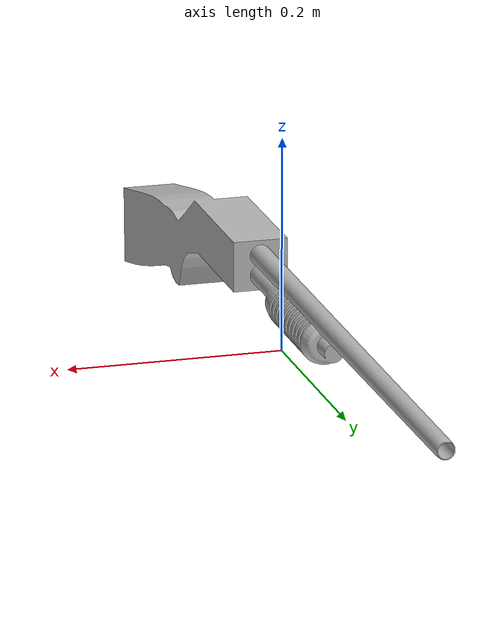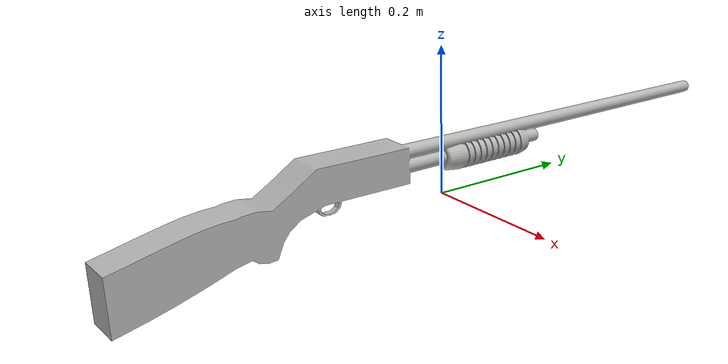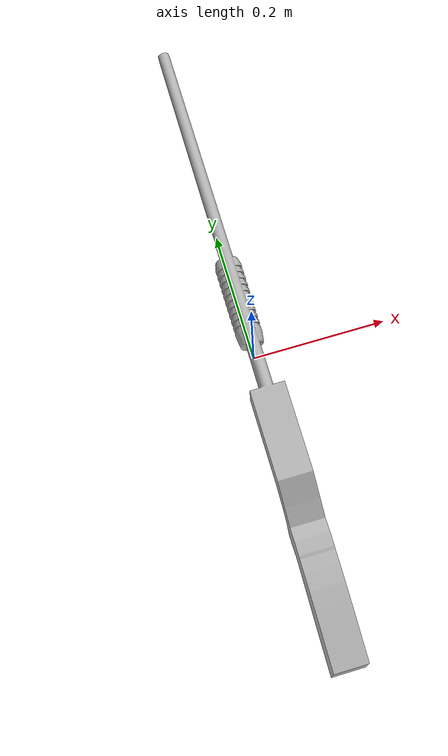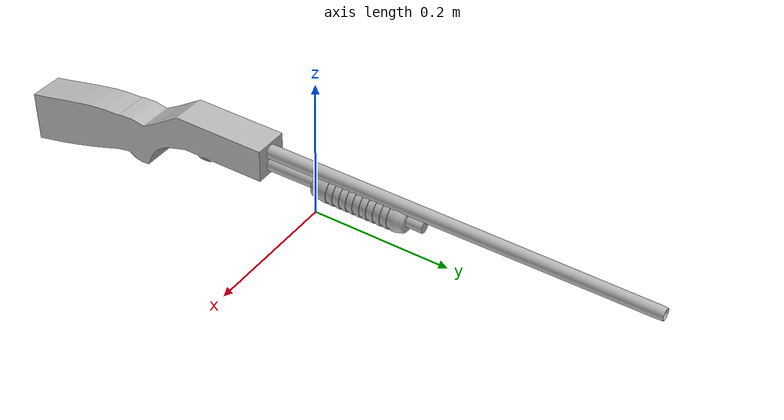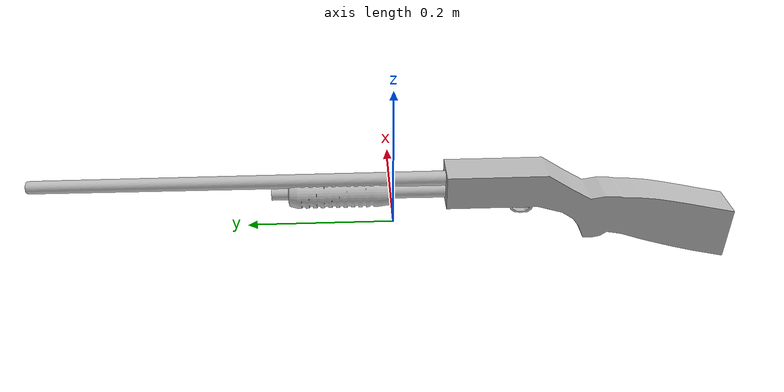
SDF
<?xml version="1.0" ?>
<sdf version="1.5">
  <model name="shotgun">
    <link name="link">
      <visual name="visual">
        <pose>0 0 0.02 0 0 1.57</pose>
        <geometry>
          <mesh>
            <uri>model://shotgun/meshes/ithacaM37.dae</uri>
            <scale>0.2 0.2 0.2 </scale>
          </mesh>
        </geometry>
      </visual>
    </link>
  </model>
</sdf>
